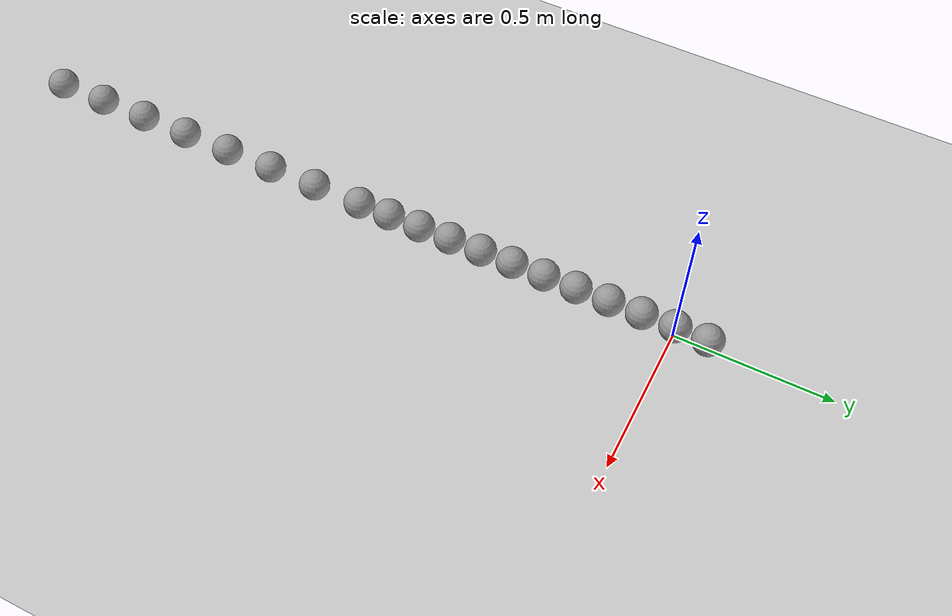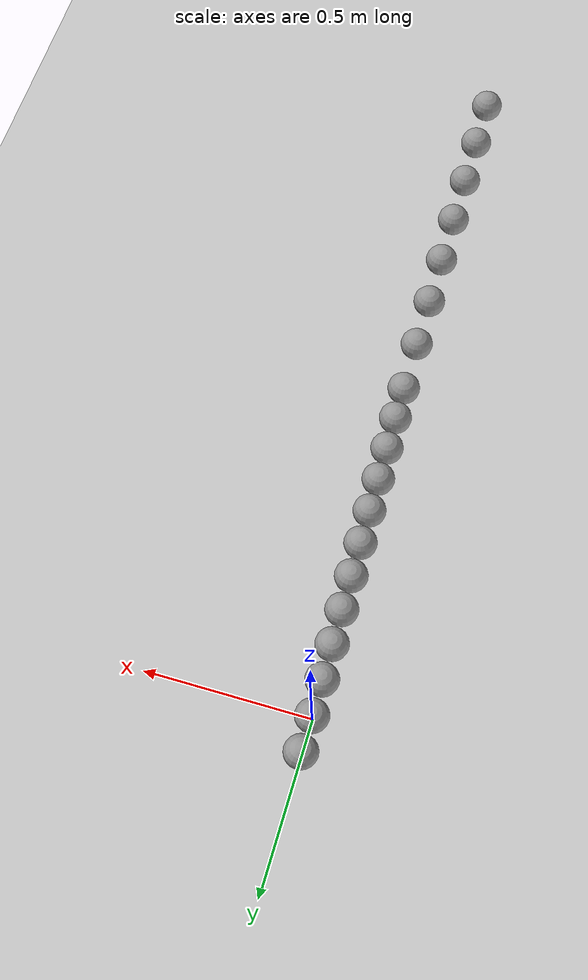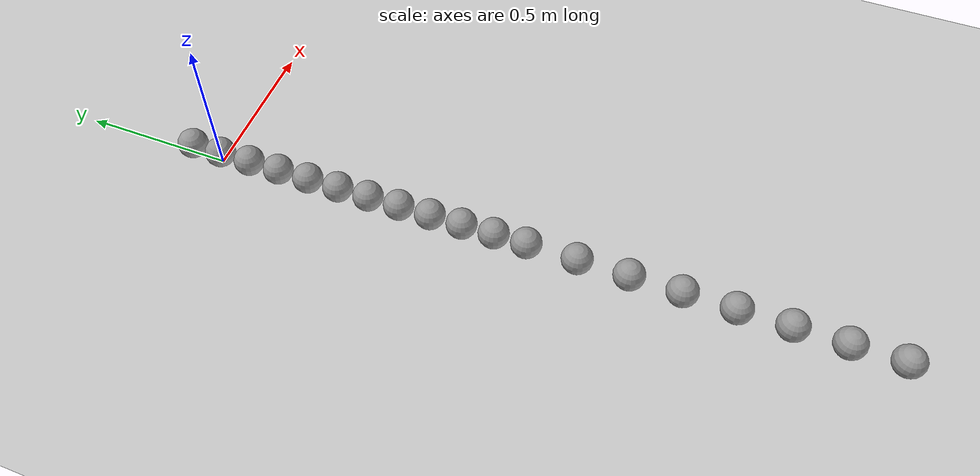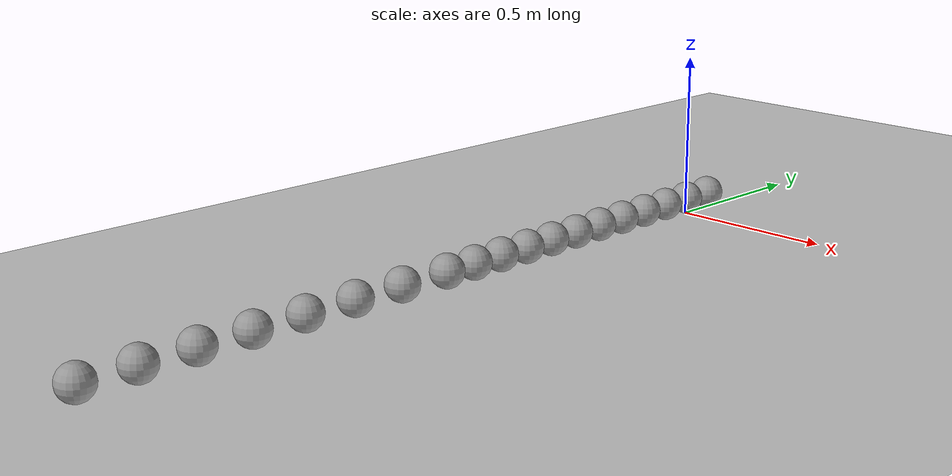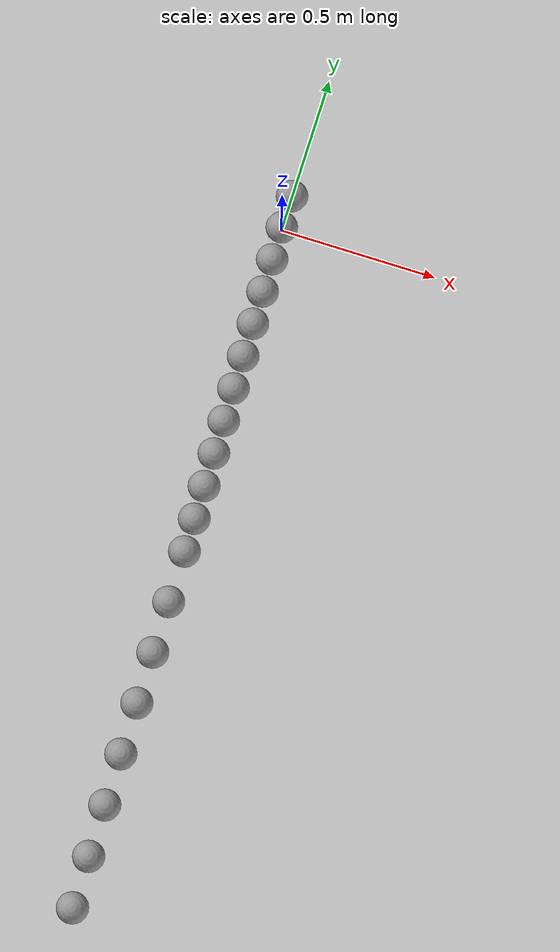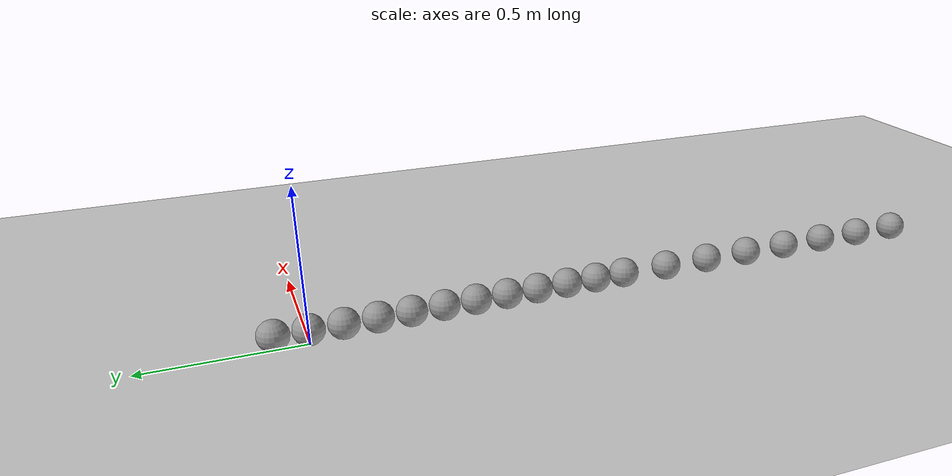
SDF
<sdf version="1.6">
 <world name="default">
  <model name="ground_plane">
   <static>1</static>
   <link name="link">
    <collision name="collision">
     <geometry><plane><normal>0 0 1</normal><size>100 100</size></plane></geometry>
     <surface><friction><ode><mu>100</mu><mu2>50</mu2></ode></friction></surface>
    </collision>
    <visual name="visual">
     <cast_shadows>0</cast_shadows>
     <geometry><plane><normal>0 0 1</normal><size>100 100</size></plane></geometry>
     <material>
      <script><uri>file://media/materials/scripts/gazebo.material</uri><name>Gazebo/Grey</name></script>
     </material>
    </visual>
   </link>
  </model>
  <model name="unit_sphere_0_0">
   <pose>0.000000 0.000000 0.050000 0 -0 0</pose>
   <link name="link">
    <inertial>
     <mass>1</mass>
     <inertia><ixx>0.1</ixx><ixy>0</ixy><ixz>0</ixz><iyy>0.1</iyy><iyz>0</iyz><izz>0.1</izz></inertia>
    </inertial>
    <collision name="collision"><geometry><sphere><radius>0.050000</radius></sphere></geometry></collision>
    <visual name="visual">
     <geometry><sphere><radius>0.050000</radius></sphere></geometry>
     <material>
      <script><name>Gazebo/Grey</name><uri>file://media/materials/scripts/gazebo.material</uri></script>
     </material>
    </visual>
   </link>
  </model>
  <model name="unit_sphere_0_1">
   <pose>0.001000 0.104000 0.050000 0 -0 0</pose>
   <link name="link">
    <inertial>
     <mass>1</mass>
     <inertia><ixx>0.1</ixx><ixy>0</ixy><ixz>0</ixz><iyy>0.1</iyy><iyz>0</iyz><izz>0.1</izz></inertia>
    </inertial>
    <collision name="collision"><geometry><sphere><radius>0.050000</radius></sphere></geometry></collision>
    <visual name="visual">
     <geometry><sphere><radius>0.050000</radius></sphere></geometry>
     <material>
      <script><name>Gazebo/Grey</name><uri>file://media/materials/scripts/gazebo.material</uri></script>
     </material>
    </visual>
   </link>
  </model>
  <model name="unit_sphere_0_133">
   <pose>0.027000 -2.201000 0.050000 0 -0 0</pose>
   <link name="link">
    <inertial>
     <mass>1</mass>
     <inertia><ixx>0.1</ixx><ixy>0</ixy><ixz>0</ixz><iyy>0.1</iyy><iyz>0</iyz><izz>0.1</izz></inertia>
    </inertial>
    <collision name="collision"><geometry><sphere><radius>0.050000</radius></sphere></geometry></collision>
    <visual name="visual">
     <geometry><sphere><radius>0.050000</radius></sphere></geometry>
     <material>
      <script><name>Gazebo/Grey</name><uri>file://media/materials/scripts/gazebo.material</uri></script>
     </material>
    </visual>
   </link>
  </model>
  <model name="unit_sphere_0_134">
   <pose>0.026000 -2.038000 0.050000 0 -0 0</pose>
   <link name="link">
    <inertial>
     <mass>1</mass>
     <inertia><ixx>0.1</ixx><ixy>0</ixy><ixz>0</ixz><iyy>0.1</iyy><iyz>0</iyz><izz>0.1</izz></inertia>
    </inertial>
    <collision name="collision"><geometry><sphere><radius>0.050000</radius></sphere></geometry></collision>
    <visual name="visual">
     <geometry><sphere><radius>0.050000</radius></sphere></geometry>
     <material>
      <script><name>Gazebo/Grey</name><uri>file://media/materials/scripts/gazebo.material</uri></script>
     </material>
    </visual>
   </link>
  </model>
  <model name="unit_sphere_0_135">
   <pose>0.025000 -1.875000 0.050000 0 -0 0</pose>
   <link name="link">
    <inertial>
     <mass>1</mass>
     <inertia><ixx>0.1</ixx><ixy>0</ixy><ixz>0</ixz><iyy>0.1</iyy><iyz>0</iyz><izz>0.1</izz></inertia>
    </inertial>
    <collision name="collision"><geometry><sphere><radius>0.050000</radius></sphere></geometry></collision>
    <visual name="visual">
     <geometry><sphere><radius>0.050000</radius></sphere></geometry>
     <material>
      <script><name>Gazebo/Grey</name><uri>file://media/materials/scripts/gazebo.material</uri></script>
     </material>
    </visual>
   </link>
  </model>
  <model name="unit_sphere_0_136">
   <pose>0.024000 -1.712000 0.050000 0 -0 0</pose>
   <link name="link">
    <inertial>
     <mass>1</mass>
     <inertia><ixx>0.1</ixx><ixy>0</ixy><ixz>0</ixz><iyy>0.1</iyy><iyz>0</iyz><izz>0.1</izz></inertia>
    </inertial>
    <collision name="collision"><geometry><sphere><radius>0.050000</radius></sphere></geometry></collision>
    <visual name="visual">
     <geometry><sphere><radius>0.050000</radius></sphere></geometry>
     <material>
      <script><name>Gazebo/Grey</name><uri>file://media/materials/scripts/gazebo.material</uri></script>
     </material>
    </visual>
   </link>
  </model>
  <model name="unit_sphere_0_137">
   <pose>0.023000 -1.549000 0.050000 0 -0 0</pose>
   <link name="link">
    <inertial>
     <mass>1</mass>
     <inertia><ixx>0.1</ixx><ixy>0</ixy><ixz>0</ixz><iyy>0.1</iyy><iyz>0</iyz><izz>0.1</izz></inertia>
    </inertial>
    <collision name="collision"><geometry><sphere><radius>0.050000</radius></sphere></geometry></collision>
    <visual name="visual">
     <geometry><sphere><radius>0.050000</radius></sphere></geometry>
     <material>
      <script><name>Gazebo/Grey</name><uri>file://media/materials/scripts/gazebo.material</uri></script>
     </material>
    </visual>
   </link>
  </model>
  <model name="unit_sphere_0_138">
   <pose>0.022000 -1.386000 0.050000 0 -0 0</pose>
   <link name="link">
    <inertial>
     <mass>1</mass>
     <inertia><ixx>0.1</ixx><ixy>0</ixy><ixz>0</ixz><iyy>0.1</iyy><iyz>0</iyz><izz>0.1</izz></inertia>
    </inertial>
    <collision name="collision"><geometry><sphere><radius>0.050000</radius></sphere></geometry></collision>
    <visual name="visual">
     <geometry><sphere><radius>0.050000</radius></sphere></geometry>
     <material>
      <script><name>Gazebo/Grey</name><uri>file://media/materials/scripts/gazebo.material</uri></script>
     </material>
    </visual>
   </link>
  </model>
  <model name="unit_sphere_0_139">
   <pose>0.021000 -1.223000 0.050000 0 -0 0</pose>
   <link name="link">
    <inertial>
     <mass>1</mass>
     <inertia><ixx>0.1</ixx><ixy>0</ixy><ixz>0</ixz><iyy>0.1</iyy><iyz>0</iyz><izz>0.1</izz></inertia>
    </inertial>
    <collision name="collision"><geometry><sphere><radius>0.050000</radius></sphere></geometry></collision>
    <visual name="visual">
     <geometry><sphere><radius>0.050000</radius></sphere></geometry>
     <material>
      <script><name>Gazebo/Grey</name><uri>file://media/materials/scripts/gazebo.material</uri></script>
     </material>
    </visual>
   </link>
  </model>
  <model name="unit_sphere_0_140">
   <pose>0.020000 -1.060000 0.050000 0 -0 0</pose>
   <link name="link">
    <inertial>
     <mass>1</mass>
     <inertia><ixx>0.1</ixx><ixy>0</ixy><ixz>0</ixz><iyy>0.1</iyy><iyz>0</iyz><izz>0.1</izz></inertia>
    </inertial>
    <collision name="collision"><geometry><sphere><radius>0.050000</radius></sphere></geometry></collision>
    <visual name="visual">
     <geometry><sphere><radius>0.050000</radius></sphere></geometry>
     <material>
      <script><name>Gazebo/Grey</name><uri>file://media/materials/scripts/gazebo.material</uri></script>
     </material>
    </visual>
   </link>
  </model>
  <model name="unit_sphere_0_141">
   <pose>0.018000 -0.954000 0.050000 0 -0 0</pose>
   <link name="link">
    <inertial>
     <mass>1</mass>
     <inertia><ixx>0.1</ixx><ixy>0</ixy><ixz>0</ixz><iyy>0.1</iyy><iyz>0</iyz><izz>0.1</izz></inertia>
    </inertial>
    <collision name="collision"><geometry><sphere><radius>0.050000</radius></sphere></geometry></collision>
    <visual name="visual">
     <geometry><sphere><radius>0.050000</radius></sphere></geometry>
     <material>
      <script><name>Gazebo/Grey</name><uri>file://media/materials/scripts/gazebo.material</uri></script>
     </material>
    </visual>
   </link>
  </model>
  <model name="unit_sphere_0_142">
   <pose>0.016000 -0.848000 0.050000 0 -0 0</pose>
   <link name="link">
    <inertial>
     <mass>1</mass>
     <inertia><ixx>0.1</ixx><ixy>0</ixy><ixz>0</ixz><iyy>0.1</iyy><iyz>0</iyz><izz>0.1</izz></inertia>
    </inertial>
    <collision name="collision"><geometry><sphere><radius>0.050000</radius></sphere></geometry></collision>
    <visual name="visual">
     <geometry><sphere><radius>0.050000</radius></sphere></geometry>
     <material>
      <script><name>Gazebo/Grey</name><uri>file://media/materials/scripts/gazebo.material</uri></script>
     </material>
    </visual>
   </link>
  </model>
  <model name="unit_sphere_0_143">
   <pose>0.014000 -0.742000 0.050000 0 -0 0</pose>
   <link name="link">
    <inertial>
     <mass>1</mass>
     <inertia><ixx>0.1</ixx><ixy>0</ixy><ixz>0</ixz><iyy>0.1</iyy><iyz>0</iyz><izz>0.1</izz></inertia>
    </inertial>
    <collision name="collision"><geometry><sphere><radius>0.050000</radius></sphere></geometry></collision>
    <visual name="visual">
     <geometry><sphere><radius>0.050000</radius></sphere></geometry>
     <material>
      <script><name>Gazebo/Grey</name><uri>file://media/materials/scripts/gazebo.material</uri></script>
     </material>
    </visual>
   </link>
  </model>
  <model name="unit_sphere_0_144">
   <pose>0.012000 -0.636000 0.050000 0 -0 0</pose>
   <link name="link">
    <inertial>
     <mass>1</mass>
     <inertia><ixx>0.1</ixx><ixy>0</ixy><ixz>0</ixz><iyy>0.1</iyy><iyz>0</iyz><izz>0.1</izz></inertia>
    </inertial>
    <collision name="collision"><geometry><sphere><radius>0.050000</radius></sphere></geometry></collision>
    <visual name="visual">
     <geometry><sphere><radius>0.050000</radius></sphere></geometry>
     <material>
      <script><name>Gazebo/Grey</name><uri>file://media/materials/scripts/gazebo.material</uri></script>
     </material>
    </visual>
   </link>
  </model>
  <model name="unit_sphere_0_145">
   <pose>0.010000 -0.530000 0.050000 0 -0 0</pose>
   <link name="link">
    <inertial>
     <mass>1</mass>
     <inertia><ixx>0.1</ixx><ixy>0</ixy><ixz>0</ixz><iyy>0.1</iyy><iyz>0</iyz><izz>0.1</izz></inertia>
    </inertial>
    <collision name="collision"><geometry><sphere><radius>0.050000</radius></sphere></geometry></collision>
    <visual name="visual">
     <geometry><sphere><radius>0.050000</radius></sphere></geometry>
     <material>
      <script><name>Gazebo/Grey</name><uri>file://media/materials/scripts/gazebo.material</uri></script>
     </material>
    </visual>
   </link>
  </model>
  <model name="unit_sphere_0_146">
   <pose>0.008000 -0.424000 0.050000 0 -0 0</pose>
   <link name="link">
    <inertial>
     <mass>1</mass>
     <inertia><ixx>0.1</ixx><ixy>0</ixy><ixz>0</ixz><iyy>0.1</iyy><iyz>0</iyz><izz>0.1</izz></inertia>
    </inertial>
    <collision name="collision"><geometry><sphere><radius>0.050000</radius></sphere></geometry></collision>
    <visual name="visual">
     <geometry><sphere><radius>0.050000</radius></sphere></geometry>
     <material>
      <script><name>Gazebo/Grey</name><uri>file://media/materials/scripts/gazebo.material</uri></script>
     </material>
    </visual>
   </link>
  </model>
  <model name="unit_sphere_0_147">
   <pose>0.006000 -0.318000 0.050000 0 -0 0</pose>
   <link name="link">
    <inertial>
     <mass>1</mass>
     <inertia><ixx>0.1</ixx><ixy>0</ixy><ixz>0</ixz><iyy>0.1</iyy><iyz>0</iyz><izz>0.1</izz></inertia>
    </inertial>
    <collision name="collision"><geometry><sphere><radius>0.050000</radius></sphere></geometry></collision>
    <visual name="visual">
     <geometry><sphere><radius>0.050000</radius></sphere></geometry>
     <material>
      <script><name>Gazebo/Grey</name><uri>file://media/materials/scripts/gazebo.material</uri></script>
     </material>
    </visual>
   </link>
  </model>
  <model name="unit_sphere_0_148">
   <pose>0.004000 -0.212000 0.050000 0 -0 0</pose>
   <link name="link">
    <inertial>
     <mass>1</mass>
     <inertia><ixx>0.1</ixx><ixy>0</ixy><ixz>0</ixz><iyy>0.1</iyy><iyz>0</iyz><izz>0.1</izz></inertia>
    </inertial>
    <collision name="collision"><geometry><sphere><radius>0.050000</radius></sphere></geometry></collision>
    <visual name="visual">
     <geometry><sphere><radius>0.050000</radius></sphere></geometry>
     <material>
      <script><name>Gazebo/Grey</name><uri>file://media/materials/scripts/gazebo.material</uri></script>
     </material>
    </visual>
   </link>
  </model>
  <model name="unit_sphere_0_149">
   <pose>0.002000 -0.106000 0.050000 0 -0 0</pose>
   <link name="link">
    <inertial>
     <mass>1</mass>
     <inertia><ixx>0.1</ixx><ixy>0</ixy><ixz>0</ixz><iyy>0.1</iyy><iyz>0</iyz><izz>0.1</izz></inertia>
    </inertial>
    <collision name="collision"><geometry><sphere><radius>0.050000</radius></sphere></geometry></collision>
    <visual name="visual">
     <geometry><sphere><radius>0.050000</radius></sphere></geometry>
     <material>
      <script><name>Gazebo/Grey</name><uri>file://media/materials/scripts/gazebo.material</uri></script>
     </material>
    </visual>
   </link>
  </model>
 </world>
</sdf>
